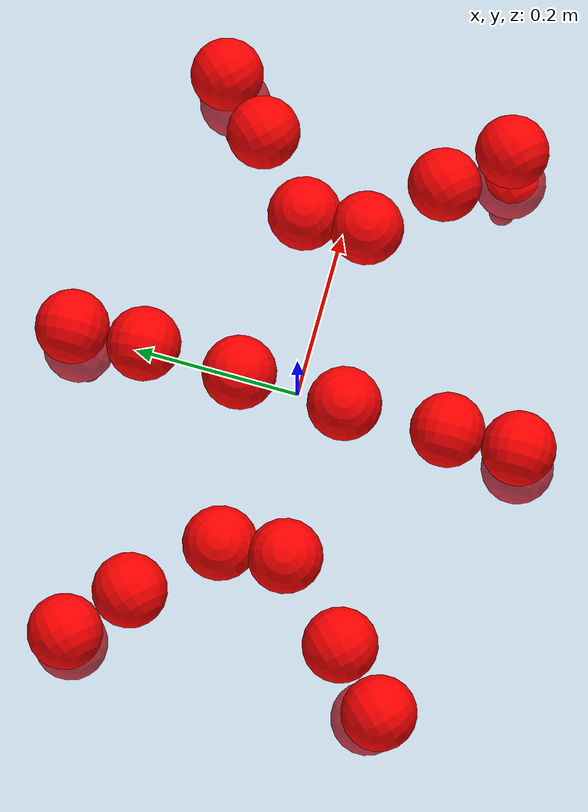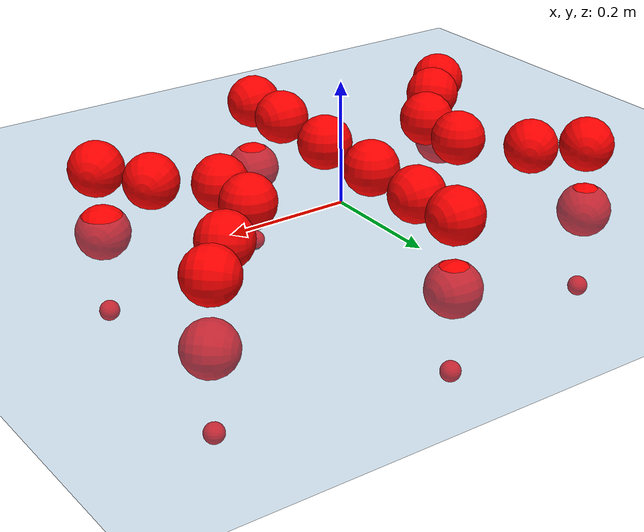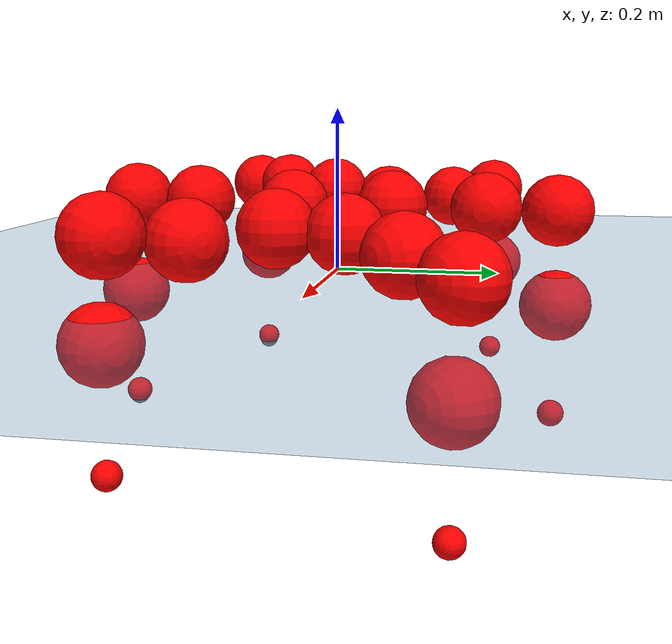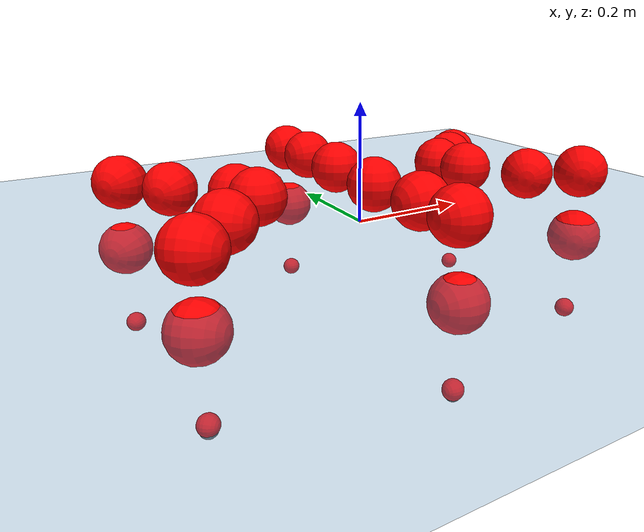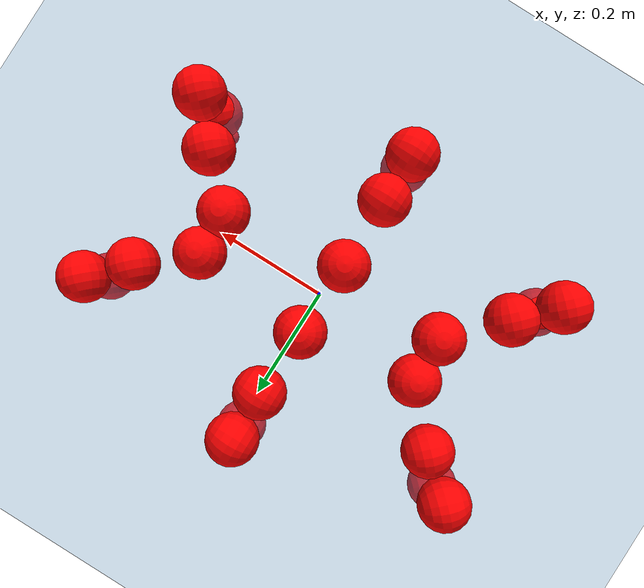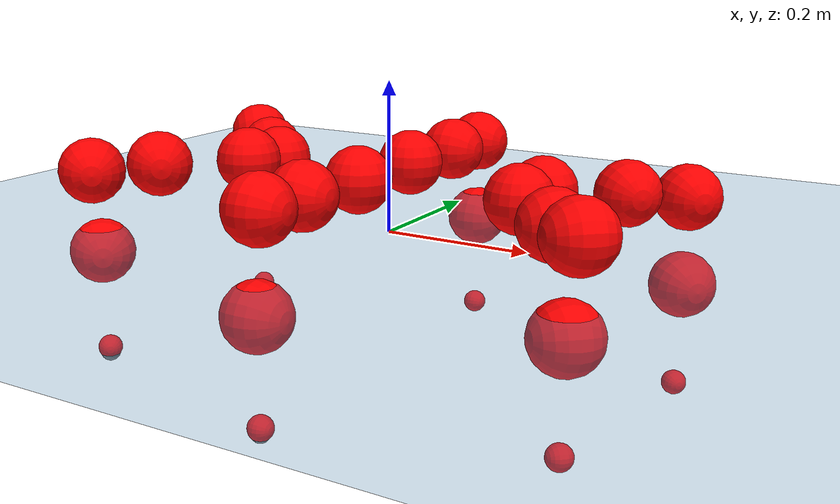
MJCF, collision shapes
<mujoco model="Golem">
  <compiler angle="radian" assetdir="assets" balanceinertia="true" inertiafromgeom="false"/>

  <option timestep="0.005" density="1.2" viscosity="2e-05"/>

  <size nkey="1"/>

  <visual>
    <quality shadowsize="8192"/>
    <map shadowclip="0.5"/>
  </visual>

  <default>
    <default class="/">
      <joint armature="0.01" damping="0.01" frictionloss="0.01"/>
      <geom contype="0" conaffinity="0" group="1" solref="-1000 -80"/>
      <site size="0.01 0.005 0.005" group="5"/>
      <general forcelimited="true" biastype="affine" gainprm="25" biasprm="0 -25 -0.5"/>
      <default class="visual">
        <geom type="mesh" group="2"/>
      </default>
      <default class="collision">
        <geom group="3"/>
      </default>
      <default class="foot">
        <geom size="0.01 0 0" condim="6" group="4" priority="1" solimp="0.015 1 0.01"/>
      </default>
      <default class="reward_collision_sphere">
        <geom group="5" rgba="1 0 0 1"/>
      </default>
    </default>
  </default>

  <asset>
    <texture type="skybox" colorspace="auto" name="//unnamed_texture_0" builtin="gradient" rgb1="0.95 0.95 0.95" rgb2="0.95 0.95 0.95" width="100" height="600"/>
    <texture type="2d" colorspace="auto" name="texplane" builtin="checker" rgb1="0.345 0.575 0.748" rgb2="0.345 0.575 0.748" markrgb="1 1 1" width="512" height="512"/>
    <material name="MatPlane" class="/" texture="texplane" texuniform="true" texrepeat="2 2" specular="0.9"/>
    <mesh name="body" class="/" file="body.stl" scale="0.001 0.001 0.001"/>
    <mesh name="coxa" class="/" file="coxa.stl" scale="0.001 0.001 0.001"/>
    <mesh name="femur" class="/" file="femur.stl" scale="0.001 0.001 0.001"/>
    <mesh name="tibia" class="/" file="tibia.stl" scale="0.001 0.001 0.001"/>
    <mesh name="tarsus" class="/" file="tarsus.stl" scale="0.001 0.001 0.001"/>
  </asset>

  <worldbody>
    <geom name="floor" class="/" size="100 100 0.125" type="plane" group="0" material="MatPlane"/>
    <light name="toplight_shadow" class="/" pos="0 0 5" dir="0.0990148 0.0990148 -0.990148" type="directional" ambient="0.04 0.04 0.04" diffuse="0.55 0.55 0.55" specular="0.12 0.12 0.12"/>
    <light name="toplight_fill" class="/" pos="0 0 5" dir="0.0990148 0.0990148 -0.990148" type="directional" castshadow="false" ambient="0.04 0.04 0.04" diffuse="0.3 0.3 0.3" specular="0.08 0.08 0.08"/>
    <body name="trunk" pos="-0.000307431 -0.000935296 0.0048215" quat="0.999994 -0.00210274 0.00117523 0.00237771">
      <inertial pos="-0.00196977 0.00207197 -0.00620755" quat="0.999986 -0.00453563 -0.00257364 -0.00085753" mass="5.53985" diaginertia="0.0362998 0.00342134 0.0252099"/>
      <joint name="//unnamed_joint_0" type="free"/>
      <geom name="//unnamed_geom_1" class="/" pos="0 0 0.077038" quat="1 0 0 0" type="mesh" rgba="0.9 0.9 0.9 1" mesh="body"/>
      <site name="imu" class="/" pos="0.168951 -0.0357117 0.07022" size="0.0109609"/>
      <camera name="track" class="/" pos="0 -1.59051 0" quat="0.707107 0.707107 0 0" mode="trackcom"/>
      <camera name="ego_camera" class="/" pos="0.167608 0 0.120372" quat="-0.5 -0.5 0.5 0.5"/>
      <body name="coxa_RR" pos="-0.227178 -0.066482 0.0778374" quat="0.385717 0.00369059 -0.00160799 -0.922609">
        <inertial pos="-0.00601469 -0.000867934 0.00380943" quat="0.999931 -0.0108315 0.00173092 0.00425548" mass="0.239227" diaginertia="0.0360434 0.0028655 0.0219266"/>
        <joint name="coxa_joint_RR" class="/" pos="0 0 0" axis="-0.00168571 0.0116248 -0.999931" range="-3.18391 3.15467" armature="0.0118946" damping="0.00968937" frictionloss="0.0100665"/>
        <geom name="//unnamed_geom_2" class="/" type="mesh" rgba="0.2 0.2 0.2 1" mesh="coxa"/>
        <geom name="//unnamed_geom_3" class="reward_collision_sphere" size="0.0438435" pos="-0.0386787 0 0"/>
        <body name="femur_RR" pos="0.081119 0.00278873 0.000838026" quat="0.502209 -0.496317 0.50131 0.500145">
          <inertial pos="-0.000415949 -0.00976204 -0.00347129" quat="0.999733 0.00454284 -0.00657917 -0.0216798" mass="0.295851" diaginertia="0.0370798 0.00361125 0.0279121"/>
          <joint name="femur_joint_RR" class="/" pos="0 0 0" axis="0.000239899 0.00454757 -0.99999" stiffness="0.00551774" range="-3.16038 3.16067" armature="0.00725027" damping="0.00733473" frictionloss="0.0106688"/>
          <geom name="//unnamed_geom_4" class="/" type="mesh" rgba="0.9 0.9 0.9 1" mesh="femur"/>
          <geom name="//unnamed_geom_5" class="reward_collision_sphere" size="0.0438435"/>
          <body name="tibia_RR" pos="0.00454809 -0.0885218 -0.000118567" quat="-0.000641851 1 -6.68431e-05 -0.000224488">
            <inertial pos="-0.00125612 -0.0088347 0.000669967" quat="1 0.000118138 -9.83844e-05 0.000252646" mass="0.27554" diaginertia="0.0372519 0.00333594 0.0264742"/>
            <joint name="tibia_joint_RR" class="/" pos="0 0 0" axis="-0.0138702 0.0396682 0.999117" stiffness="0.0281442" range="-3.31688 3.14478" armature="0.0132435" damping="0.0374673" frictionloss="0.00511691"/>
            <geom name="//unnamed_geom_6" class="/" type="mesh" rgba="0.2 0.2 0.2 1" mesh="tibia"/>
            <geom name="//unnamed_geom_7" class="reward_collision_sphere" size="0.0438435"/>
            <body name="tarsus_RR" pos="0.112648 -0.00617358 0.00897285" quat="0.999998 0.00114834 0.00126639 -0.000431565">
              <inertial pos="0.0748347 -0.000478481 -0.00549951" quat="0.49117 0.493463 0.508085 0.507046" mass="0.28866" diaginertia="0.0395961 0.00351907 0.0241044"/>
              <joint name="tarsus_joint_RR" class="/" pos="0 0 0" axis="-0.00395529 -0.0237355 0.99971" range="-3.06475 3.10506" armature="0.0117075" damping="0" frictionloss="0.0117002"/>
              <geom name="//unnamed_geom_8" class="/" type="mesh" rgba="0.9 0.9 0.9 1" mesh="tarsus"/>
              <geom name="foot_1" class="foot" size="0.0139144" pos="0.144401 0 0" quat="0 -0.707107 0 0.707107"/>
              <geom name="//unnamed_geom_10" class="reward_collision_sphere" size="0.0438435"/>
              <geom name="//unnamed_geom_11" class="reward_collision_sphere" size="0.0164413" pos="0.138599 0 0"/>
              <site name="foot_1" class="foot" pos="0.144401 0 0" quat="0 -0.707107 0 0.707107" size="0.0109609"/>
            </body>
          </body>
        </body>
      </body>
      <body name="coxa_RM" pos="-0.0102362 -0.0968941 0.0751477" quat="0.707126 9.9877e-06 -0.000182687 -0.707088">
        <inertial pos="0.00183109 0.000157548 0.00729301" quat="0.998755 -0.0495486 -0.00530272 -0.00237799" mass="0.238997" diaginertia="0.0318508 0.00246472 0.0203503"/>
        <joint name="coxa_joint_RM" class="/" pos="0 0 0" axis="-0.0372555 -0.0282825 -0.998905" stiffness="0.0140877" range="-3.12544 3.20774" armature="0.0111902" damping="0.0164149" frictionloss="0.00824541"/>
        <geom name="//unnamed_geom_12" class="/" type="mesh" rgba="0.2 0.2 0.2 1" mesh="coxa"/>
        <geom name="//unnamed_geom_13" class="reward_collision_sphere" size="0.0438435" pos="-0.0386787 0 0"/>
        <body name="femur_RM" pos="0.0844278 0.000604699 0.00359423" quat="0.500656 -0.499127 0.500289 0.499927">
          <inertial pos="0.00105219 -0.00579222 0.00145339" quat="0.999988 0.00148631 0.004031 0.00221556" mass="0.253569" diaginertia="0.0392362 0.00313191 0.0264393"/>
          <joint name="femur_joint_RM" class="/" pos="0 0 0" axis="0.00443734 0.00292325 -0.999986" stiffness="0.0315486" range="-3.27607 3.07594" armature="0.00792067" damping="0.0115035" frictionloss="0.00656996"/>
          <geom name="//unnamed_geom_14" class="/" type="mesh" rgba="0.9 0.9 0.9 1" mesh="femur"/>
          <geom name="//unnamed_geom_15" class="reward_collision_sphere" size="0.0438435"/>
          <body name="tibia_RM" pos="-0.00153569 -0.0845834 0.000482952" quat="0.000627295 1 -0.000564819 -0.00048938">
            <inertial pos="0.00208065 4.24845e-05 -0.00628559" quat="0.999996 -0.000101446 0.00274978 -0.000116923" mass="0.235345" diaginertia="0.0348952 0.00314875 0.02636"/>
            <joint name="tibia_joint_RM" class="/" pos="0 0 0" axis="0.0144037 0.0407761 0.999064" stiffness="0.0010393" range="-3.1824 3.03328" armature="0.0159025" damping="0.0136324" frictionloss="0.00618473"/>
            <geom name="//unnamed_geom_16" class="/" type="mesh" rgba="0.2 0.2 0.2 1" mesh="tibia"/>
            <geom name="//unnamed_geom_17" class="reward_collision_sphere" size="0.0438435"/>
            <body name="tarsus_RM" pos="0.124154 0.00795059 0.00022613" quat="0.999996 0.00246314 -0.000692576 -0.00111729">
              <inertial pos="0.0792867 -0.000527261 0.0016343" quat="0.49684 0.501888 0.495185 0.506013" mass="0.216771" diaginertia="0.031038 0.00282744 0.022462"/>
              <joint name="tarsus_joint_RM" class="/" pos="0 0 0" axis="-0.00289141 0.00915258 0.999954" range="-3.17131 3.13039" armature="0.0124548" damping="0" frictionloss="0.0110279"/>
              <geom name="//unnamed_geom_18" class="/" type="mesh" rgba="0.9 0.9 0.9 1" mesh="tarsus"/>
              <geom name="foot_2" class="foot" size="0.0127667" pos="0.144401 0 0" quat="0 -0.707107 0 0.707107"/>
              <geom name="//unnamed_geom_20" class="reward_collision_sphere" size="0.0438435"/>
              <geom name="//unnamed_geom_21" class="reward_collision_sphere" size="0.0164413" pos="0.138599 0 0"/>
              <site name="foot_2" class="foot" pos="0.144401 0 0" quat="0 -0.707107 0 0.707107" size="0.0109609"/>
            </body>
          </body>
        </body>
      </body>
      <body name="coxa_RF" pos="0.227658 -0.0564502 0.0704357" quat="0.92372 0.000565785 0.000163374 -0.383067">
        <inertial pos="0.00905159 0.00207025 0.00623062" quat="0.999742 0.000915023 0.00296249 -0.0224888" mass="0.254891" diaginertia="0.0303935 0.00279191 0.0215041"/>
        <joint name="coxa_joint_RF" class="/" pos="0 0 0" axis="-0.00195493 -0.00163782 -0.999997" stiffness="0.0334393" range="-3.10086 3.23169" armature="0.0105293" damping="0" frictionloss="0.00647801"/>
        <geom name="//unnamed_geom_22" class="/" type="mesh" rgba="0.2 0.2 0.2 1" mesh="coxa"/>
        <geom name="//unnamed_geom_23" class="reward_collision_sphere" size="0.0438435" pos="-0.0386787 0 0"/>
        <body name="femur_RF" pos="0.0680158 0.000869915 -0.00436467" quat="0.499251 -0.500069 0.502663 0.498005">
          <inertial pos="0.00116911 0.00157075 7.95089e-05" quat="0.999836 0.00652188 -0.0156008 -0.00655828" mass="0.257598" diaginertia="0.0384507 0.00330141 0.0267879"/>
          <joint name="femur_joint_RF" class="/" pos="0 0 0" axis="0.00622684 0.000941859 -0.99998" range="-3.19325 3.14581" armature="0.0114039" damping="0.0168049" frictionloss="0.0117451"/>
          <geom name="//unnamed_geom_24" class="/" type="mesh" rgba="0.9 0.9 0.9 1" mesh="femur"/>
          <geom name="//unnamed_geom_25" class="reward_collision_sphere" size="0.0438435"/>
          <body name="tibia_RF" pos="-0.0107344 -0.0874141 -0.0070326" quat="0.000129257 1 0.000302682 0.000792284">
            <inertial pos="-0.00159996 0.00847053 0.00664505" quat="0.999196 0.0250703 0.0262006 0.0171171" mass="0.289014" diaginertia="0.0410541 0.00358092 0.0251548"/>
            <joint name="tibia_joint_RF" class="/" pos="0 0 0" axis="-0.0200661 0.0346068 0.9992" stiffness="0.0533754" range="-3.07758 3.17092" armature="0.0120987" damping="0.0382479" frictionloss="0.0132695"/>
            <geom name="//unnamed_geom_26" class="/" type="mesh" rgba="0.2 0.2 0.2 1" mesh="tibia"/>
            <geom name="//unnamed_geom_27" class="reward_collision_sphere" size="0.0438435"/>
            <body name="tarsus_RF" pos="0.111194 0.000889004 0.00944584" quat="1 -2.16413e-06 2.06862e-05 1.16451e-05">
              <inertial pos="0.0775417 0.000858765 -0.00180157" quat="0.50501 0.495968 0.497008 0.50196" mass="0.279064" diaginertia="0.0381294 0.00358534 0.0265161"/>
              <joint name="tarsus_joint_RF" class="/" pos="0 0 0" axis="0.0318435 0.0391158 0.998727" range="-3.16304 3.13188" armature="0.0117436" damping="0.0100062" frictionloss="0.00884171"/>
              <geom name="//unnamed_geom_28" class="/" type="mesh" rgba="0.9 0.9 0.9 1" mesh="tarsus"/>
              <geom name="foot_3" class="foot" size="0.00978316" pos="0.144401 0 0" quat="0 -0.707107 0 0.707107"/>
              <geom name="//unnamed_geom_30" class="reward_collision_sphere" size="0.0438435"/>
              <geom name="//unnamed_geom_31" class="reward_collision_sphere" size="0.0164413" pos="0.138599 0 0"/>
              <site name="foot_3" class="foot" pos="0.144401 0 0" quat="0 -0.707107 0 0.707107" size="0.0109609"/>
            </body>
          </body>
        </body>
      </body>
      <body name="coxa_LR" pos="-0.231244 0.0652204 0.0680614" quat="0.385626 -0.00198112 0.000275155 0.922653">
        <inertial pos="0.00313188 -0.0068371 0.00750673" quat="0.999997 -6.69374e-05 0.00181998 -0.00160384" mass="0.259273" diaginertia="0.0363358 0.00341232 0.0256421"/>
        <joint name="coxa_joint_LR" class="/" pos="0 0 0" axis="0.0268333 -0.0149164 -0.999529" range="-3.08637 2.97292" armature="0.0104003" damping="0.0192659" frictionloss="0.00785533"/>
        <geom name="//unnamed_geom_32" class="/" type="mesh" rgba="0.2 0.2 0.2 1" mesh="coxa"/>
        <geom name="//unnamed_geom_33" class="reward_collision_sphere" size="0.0438435" pos="-0.0386787 0 0"/>
        <body name="femur_LR" pos="0.0781272 -0.00401346 -0.00434628" quat="0.499285 -0.500309 0.499818 0.500587">
          <inertial pos="0.00157428 -0.00558212 -0.00107757" quat="0.998957 -0.0286285 -0.0132497 0.0330142" mass="0.272277" diaginertia="0.0328986 0.00321515 0.0268049"/>
          <joint name="femur_joint_LR" class="/" pos="0 0 0" axis="-0.0348703 -0.0433599 0.998451" range="-3.08046 3.10285" armature="0.00561887" damping="0" frictionloss="0.0119265"/>
          <geom name="//unnamed_geom_34" class="/" type="mesh" rgba="0.9 0.9 0.9 1" mesh="femur"/>
          <geom name="//unnamed_geom_35" class="reward_collision_sphere" size="0.0438435"/>
          <body name="tibia_LR" pos="-0.00728326 -0.0871199 0.00588586" quat="-0.000269753 1 4.76567e-05 -0.000614346">
            <inertial pos="0.00331021 -0.00133137 -0.00651828" quat="0.999639 0.0114133 -0.0239578 0.00409274" mass="0.237224" diaginertia="0.0359353 0.00307966 0.0259987"/>
            <joint name="tibia_joint_LR" class="/" pos="0 0 0" axis="-0.00277916 0.00880586 -0.999957" stiffness="0.00607963" range="-3.3228 3.02391" armature="0.0148963" damping="0.0178216" frictionloss="0.0107508"/>
            <geom name="//unnamed_geom_36" class="/" type="mesh" rgba="0.2 0.2 0.2 1" mesh="tibia"/>
            <geom name="//unnamed_geom_37" class="reward_collision_sphere" size="0.0438435"/>
            <body name="tarsus_LR" pos="0.114408 0.00375149 -0.00089558" quat="1 -0.000177535 -0.000123253 -0.000249798">
              <inertial pos="0.0763819 0.00774081 0.000690985" quat="0.497925 0.499367 0.500763 0.501936" mass="0.295633" diaginertia="0.0360828 0.00280143 0.0245117"/>
              <joint name="tarsus_joint_LR" class="/" pos="0 0 0" axis="0.00589358 0.00219351 -0.99998" range="-3.14794 3.05167" armature="0.0106337" damping="0.0205185" frictionloss="0.0132598"/>
              <geom name="//unnamed_geom_38" class="/" type="mesh" rgba="0.9 0.9 0.9 1" mesh="tarsus"/>
              <geom name="foot_4" class="foot" size="0.00924446" pos="0.144401 0 0" quat="0.707107 0 -0.707107 0"/>
              <geom name="//unnamed_geom_40" class="reward_collision_sphere" size="0.0438435"/>
              <geom name="//unnamed_geom_41" class="reward_collision_sphere" size="0.0164413" pos="0.138599 0 0"/>
              <site name="foot_4" class="foot" pos="0.144401 0 0" quat="0.707107 0 -0.707107 0" size="0.0109609"/>
            </body>
          </body>
        </body>
      </body>
      <body name="coxa_LM" pos="-0.00678013 0.107673 0.0764482" quat="0.707081 8.32724e-06 -4.5728e-05 0.707133">
        <inertial pos="0.00110432 0.00138808 0.00890719" quat="0.999994 0.00288533 0.000294021 -0.00199809" mass="0.268307" diaginertia="0.0341953 0.00310616 0.0249781"/>
        <joint name="coxa_joint_LM" class="/" pos="0 0 0" axis="0.0177128 -0.00329962 -0.999838" stiffness="0.00493252" range="-3.15593 3.09579" armature="0.0102432" damping="0.0371004" frictionloss="0.0112331"/>
        <geom name="//unnamed_geom_42" class="/" type="mesh" rgba="0.2 0.2 0.2 1" mesh="coxa"/>
        <geom name="//unnamed_geom_43" class="reward_collision_sphere" size="0.0438435" pos="-0.0386787 0 0"/>
        <body name="femur_LM" pos="0.0777301 -0.00376102 6.29105e-05" quat="0.500073 -0.49959 0.499391 0.500944">
          <inertial pos="0.00580023 -0.000863586 0.0103442" quat="0.999547 0.0164925 -0.023634 0.00862907" mass="0.275155" diaginertia="0.0367822 0.00334456 0.0267509"/>
          <joint name="femur_joint_LM" class="/" pos="0 0 0" axis="-0.00891308 -0.0163214 0.999827" range="-3.1425 3.33806" armature="0.0131319" damping="0.0350834" frictionloss="0.0148953"/>
          <geom name="//unnamed_geom_44" class="/" type="mesh" rgba="0.9 0.9 0.9 1" mesh="femur"/>
          <geom name="//unnamed_geom_45" class="reward_collision_sphere" size="0.0438435"/>
          <body name="tibia_LM" pos="0.00163995 -0.0861675 0.00174572" quat="0.00145992 0.999999 -0.000538872 -0.000134104">
            <inertial pos="-0.00255503 0.0019034 -0.000467795" quat="0.99999 -0.00435085 -0.000386679 0.000239403" mass="0.284413" diaginertia="0.0401239 0.00356486 0.028385"/>
            <joint name="tibia_joint_LM" class="/" pos="0 0 0" axis="0.0307285 0.0182602 -0.999361" range="-3.27702 3.20713" armature="0.00509801" damping="0.0466826" frictionloss="0.00725513"/>
            <geom name="//unnamed_geom_46" class="/" type="mesh" rgba="0.2 0.2 0.2 1" mesh="tibia"/>
            <geom name="//unnamed_geom_47" class="reward_collision_sphere" size="0.0438435"/>
            <body name="tarsus_LM" pos="0.11675 0.00124869 0.000780772" quat="1 0.000258953 -0.00054115 -0.000503153">
              <inertial pos="0.0799824 0.00552591 0.00181821" quat="0.513902 0.493834 0.498665 0.493321" mass="0.291857" diaginertia="0.0405246 0.00409666 0.0291647"/>
              <joint name="tarsus_joint_LM" class="/" pos="0 0 0" axis="0.0179171 0.0101361 -0.999788" range="-3.12826 3.14101" armature="0.0109445" damping="0" frictionloss="0.00559255"/>
              <geom name="//unnamed_geom_48" class="/" type="mesh" rgba="0.9 0.9 0.9 1" mesh="tarsus"/>
              <geom name="foot_5" class="foot" size="0.00936236" pos="0.144401 0 0" quat="0.707107 0 -0.707107 0"/>
              <geom name="//unnamed_geom_50" class="reward_collision_sphere" size="0.0438435"/>
              <geom name="//unnamed_geom_51" class="reward_collision_sphere" size="0.0164413" pos="0.138599 0 0"/>
              <site name="foot_5" class="foot" pos="0.144401 0 0" quat="0.707107 0 -0.707107 0" size="0.0109609"/>
            </body>
          </body>
        </body>
      </body>
      <body name="coxa_LF" pos="0.226273 0.073695 0.0666769" quat="0.92397 0.000343245 0.000692626 0.382465">
        <inertial pos="0.00878646 0.0104684 0.00545573" quat="0.999993 0.00300878 -0.00142087 -0.00143069" mass="0.278873" diaginertia="0.0387068 0.00388415 0.0252063"/>
        <joint name="coxa_joint_LF" class="/" pos="0 0 0" axis="0.0436838 -0.00238491 -0.999043" stiffness="0.00181355" range="-3.06205 3.12976" armature="0.0104906" damping="0.00515256" frictionloss="0.0143152"/>
        <geom name="//unnamed_geom_52" class="/" type="mesh" rgba="0.2 0.2 0.2 1" mesh="coxa"/>
        <geom name="//unnamed_geom_53" class="reward_collision_sphere" size="0.0438435" pos="-0.0386787 0 0"/>
        <body name="femur_LF" pos="0.0735118 -0.00813799 -0.00765588" quat="0.499121 -0.498103 0.502057 0.50071">
          <inertial pos="0.000117122 0.00409396 -0.000991311" quat="0.999996 0.00111611 -0.00127372 -0.00238546" mass="0.285572" diaginertia="0.0436227 0.00346643 0.0277713"/>
          <joint name="femur_joint_LF" class="/" pos="0 0 0" axis="-0.0394698 0.0149155 0.999109" stiffness="0.00585467" range="-3.08153 3.01128" armature="0.0113066" damping="0.0138131" frictionloss="0.00999463"/>
          <geom name="//unnamed_geom_54" class="/" type="mesh" rgba="0.9 0.9 0.9 1" mesh="femur"/>
          <geom name="//unnamed_geom_55" class="reward_collision_sphere" size="0.0438435"/>
          <body name="tibia_LF" pos="0.00937902 -0.086801 0.00112719" quat="-0.00153033 0.999999 -0.000382546 -0.000713611">
            <inertial pos="-0.00439559 -0.00814343 0.00344799" quat="0.999958 -0.00152033 0.00758214 0.00487496" mass="0.248631" diaginertia="0.0380101 0.00310873 0.026629"/>
            <joint name="tibia_joint_LF" class="/" pos="0 0 0" axis="-0.0228795 0.00811281 -0.999705" stiffness="0.0468556" range="-3.10237 3.26851" armature="0.0117411" damping="0.0340981" frictionloss="0.0106976"/>
            <geom name="//unnamed_geom_56" class="/" type="mesh" rgba="0.2 0.2 0.2 1" mesh="tibia"/>
            <geom name="//unnamed_geom_57" class="reward_collision_sphere" size="0.0438435"/>
            <body name="tarsus_LF" pos="0.116367 -0.00229965 0.00611299" quat="1 -0.000276683 2.82051e-05 -9.01192e-05">
              <inertial pos="0.0880229 0.000346924 0.000418682" quat="0.480585 0.467043 0.513561 0.535877" mass="0.269649" diaginertia="0.0363355 0.00316538 0.0247103"/>
              <joint name="tarsus_joint_LF" class="/" pos="0 0 0" axis="0.0556269 0.000771002 -0.998451" range="-3.20055 3.25109" armature="0.0113395" damping="0.0379596" frictionloss="0.0124732"/>
              <geom name="//unnamed_geom_58" class="/" type="mesh" rgba="0.9 0.9 0.9 1" mesh="tarsus"/>
              <geom name="foot_6" class="foot" size="0.0098806" pos="0.144401 0 0" quat="0.707107 0 -0.707107 0"/>
              <geom name="//unnamed_geom_60" class="reward_collision_sphere" size="0.0438435"/>
              <geom name="//unnamed_geom_61" class="reward_collision_sphere" size="0.0164413" pos="0.138599 0 0"/>
              <site name="foot_6" class="foot" pos="0.144401 0 0" quat="0.707107 0 -0.707107 0" size="0.0109609"/>
            </body>
          </body>
        </body>
      </body>
    </body>
  </worldbody>

  <contact>
    <pair class="/" geom1="floor" geom2="foot_1" name="//unnamed_contact_0"/>
    <pair class="/" geom1="floor" geom2="foot_2" name="//unnamed_contact_1"/>
    <pair class="/" geom1="floor" geom2="foot_3" name="//unnamed_contact_2"/>
    <pair class="/" geom1="floor" geom2="foot_4" name="//unnamed_contact_3"/>
    <pair class="/" geom1="floor" geom2="foot_5" name="//unnamed_contact_4"/>
    <pair class="/" geom1="floor" geom2="foot_6" name="//unnamed_contact_5"/>
  </contact>

  <actuator>
    <general name="coxa_joint_RR" class="/" joint="coxa_joint_RR" forcerange="-8.1182 8.1182" gainprm="24.8031" biasprm="0 -24.8031 -0.520738"/>
    <general name="femur_joint_RR" class="/" joint="femur_joint_RR" forcerange="-7.87891 7.87891" gainprm="24.8031" biasprm="0 -24.8031 -0.520738"/>
    <general name="tibia_joint_RR" class="/" joint="tibia_joint_RR" forcerange="-7.76073 7.76073" gainprm="24.8031" biasprm="0 -24.8031 -0.520738"/>
    <general name="tarsus_joint_RR" class="/" joint="tarsus_joint_RR" forcerange="-5.97211 5.97211" gainprm="24.8031" biasprm="0 -24.8031 -0.520738"/>
    <general name="coxa_joint_RM" class="/" joint="coxa_joint_RM" forcerange="-8.5687 8.5687" gainprm="24.8031" biasprm="0 -24.8031 -0.520738"/>
    <general name="femur_joint_RM" class="/" joint="femur_joint_RM" forcerange="-5.94139 5.94139" gainprm="24.8031" biasprm="0 -24.8031 -0.520738"/>
    <general name="tibia_joint_RM" class="/" joint="tibia_joint_RM" forcerange="-7.79113 7.79113" gainprm="24.8031" biasprm="0 -24.8031 -0.520738"/>
    <general name="tarsus_joint_RM" class="/" joint="tarsus_joint_RM" forcerange="-7.31773 7.31773" gainprm="24.8031" biasprm="0 -24.8031 -0.520738"/>
    <general name="coxa_joint_RF" class="/" joint="coxa_joint_RF" forcerange="-10.0215 10.0215" gainprm="24.8031" biasprm="0 -24.8031 -0.520738"/>
    <general name="femur_joint_RF" class="/" joint="femur_joint_RF" forcerange="-8.37342 8.37342" gainprm="24.8031" biasprm="0 -24.8031 -0.520738"/>
    <general name="tibia_joint_RF" class="/" joint="tibia_joint_RF" forcerange="-7.58593 7.58593" gainprm="24.8031" biasprm="0 -24.8031 -0.520738"/>
    <general name="tarsus_joint_RF" class="/" joint="tarsus_joint_RF" forcerange="-8.29325 8.29325" gainprm="24.8031" biasprm="0 -24.8031 -0.520738"/>
    <general name="coxa_joint_LR" class="/" joint="coxa_joint_LR" forcerange="-8.36247 8.36247" gainprm="24.8031" biasprm="0 -24.8031 -0.520738"/>
    <general name="femur_joint_LR" class="/" joint="femur_joint_LR" forcerange="-8.1792 8.1792" gainprm="24.8031" biasprm="0 -24.8031 -0.520738"/>
    <general name="tibia_joint_LR" class="/" joint="tibia_joint_LR" forcerange="-7.50705 7.50705" gainprm="24.8031" biasprm="0 -24.8031 -0.520738"/>
    <general name="tarsus_joint_LR" class="/" joint="tarsus_joint_LR" forcerange="-8.56983 8.56983" gainprm="24.8031" biasprm="0 -24.8031 -0.520738"/>
    <general name="coxa_joint_LM" class="/" joint="coxa_joint_LM" forcerange="-7.90815 7.90815" gainprm="24.8031" biasprm="0 -24.8031 -0.520738"/>
    <general name="femur_joint_LM" class="/" joint="femur_joint_LM" forcerange="-7.80743 7.80743" gainprm="24.8031" biasprm="0 -24.8031 -0.520738"/>
    <general name="tibia_joint_LM" class="/" joint="tibia_joint_LM" forcerange="-7.87157 7.87157" gainprm="24.8031" biasprm="0 -24.8031 -0.520738"/>
    <general name="tarsus_joint_LM" class="/" joint="tarsus_joint_LM" forcerange="-7.38343 7.38343" gainprm="24.8031" biasprm="0 -24.8031 -0.520738"/>
    <general name="coxa_joint_LF" class="/" joint="coxa_joint_LF" forcerange="-9.03121 9.03121" gainprm="24.8031" biasprm="0 -24.8031 -0.520738"/>
    <general name="femur_joint_LF" class="/" joint="femur_joint_LF" forcerange="-7.93011 7.93011" gainprm="24.8031" biasprm="0 -24.8031 -0.520738"/>
    <general name="tibia_joint_LF" class="/" joint="tibia_joint_LF" forcerange="-8.29378 8.29378" gainprm="24.8031" biasprm="0 -24.8031 -0.520738"/>
    <general name="tarsus_joint_LF" class="/" joint="tarsus_joint_LF" forcerange="-8.09897 8.09897" gainprm="24.8031" biasprm="0 -24.8031 -0.520738"/>
  </actuator>

  <sensor>
    <gyro site="imu" name="imu_angular_velocity"/>
    <velocimeter site="imu" name="imu_linear_velocity"/>
    <framelinvel objtype="site" objname="foot_1" name="foot_1_global_linear_velocity"/>
    <framelinvel objtype="site" objname="foot_2" name="foot_2_global_linear_velocity"/>
    <framelinvel objtype="site" objname="foot_3" name="foot_3_global_linear_velocity"/>
    <framelinvel objtype="site" objname="foot_4" name="foot_4_global_linear_velocity"/>
    <framelinvel objtype="site" objname="foot_5" name="foot_5_global_linear_velocity"/>
    <framelinvel objtype="site" objname="foot_6" name="foot_6_global_linear_velocity"/>
  </sensor>

  <keyframe>
    <key name="home" qpos="0 0 0.1457 1 0 0 0 0 0 0 0 0 0 0 0 0 0 0 0 0 0 0 0 0 0 0 0 0 0 0 0"/>
  </keyframe>
</mujoco>
